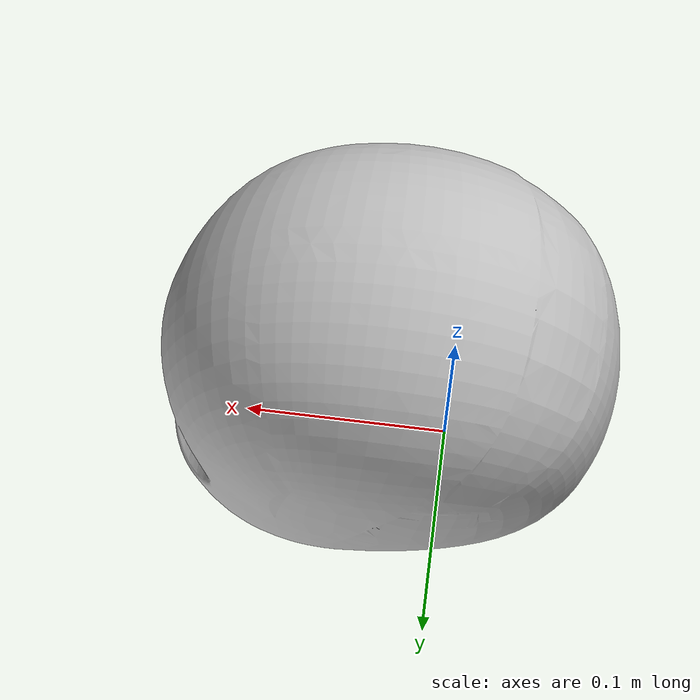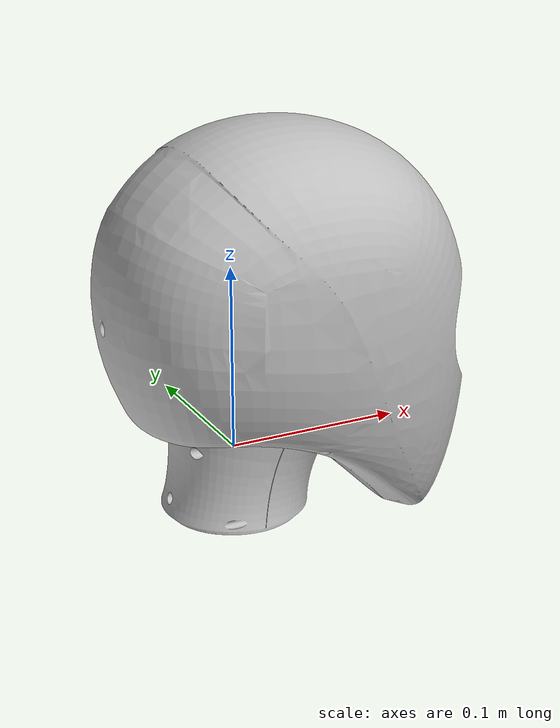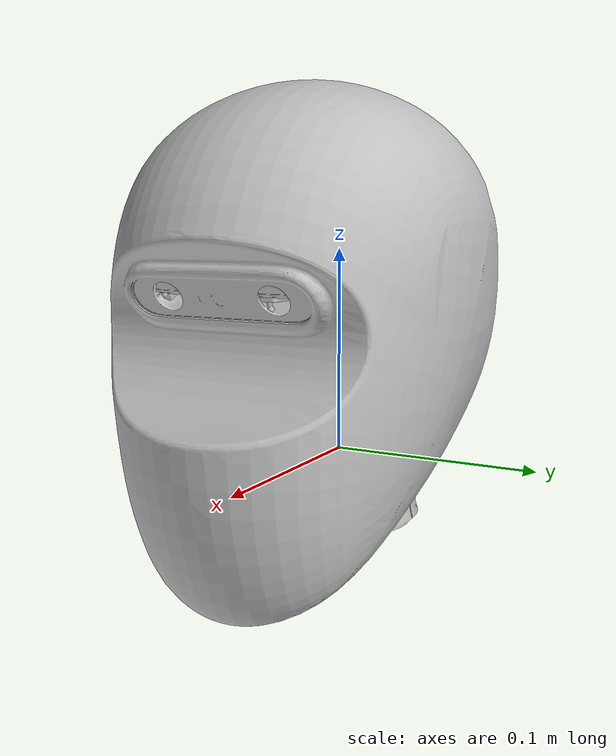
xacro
<?xml version="1.0" encoding="utf-8"?>
<robot xmlns:xacro="http://wiki.ros.org/xacro"
  name="head">
  <link
    name="head_yaw_link">
    <inertial>
      <origin
        xyz="-0.000202 0.000454 0.007248"
        rpy="0 0 0" />
      <mass
        value="0.0883974" />
      <inertia
        ixx="0.000095"
        ixy="-0.000001"
        ixz="-0.000003"
        iyy="0.000076"
        iyz="-0.000003"
        izz="0.000106" />
    </inertial>
    <visual>
      <origin
        xyz="0 0 0"
        rpy="0 0 0" />
      <geometry>
        <mesh
          filename="package://tianyi2_description/meshes/head/visual/head_yaw_link.STL" />
      </geometry>
      <material
        name="">
        <color
          rgba="0.752941176470588 0.752941176470588 0.752941176470588 1" />
      </material>
    </visual>
    <collision>
      <origin
        xyz="0 0 0"
        rpy="0 0 0" />
      <geometry>
        <sphere radius="0.01"/>
      </geometry>
    </collision>
  </link>
  <link
    name="head_pitch_link">
    <inertial>
      <origin
        xyz="-0.000274 0.004118 0.000023"
        rpy="0 0 0" />
      <mass
        value="0.230460" />
      <inertia
        ixx="0.000092"
        ixy="0.000001"
        ixz="-0.000001"
        iyy="0.000054"
        iyz="0"
        izz="0.000095" />
    </inertial>
    <visual>
      <origin
        xyz="0 0 0"
        rpy="0 0 0" />
      <geometry>
        <mesh
          filename="package://tianyi2_description/meshes/head/visual/head_pitch_link.STL" />
      </geometry>
      <material
        name="">
        <color
          rgba="0.752941176470588 0.752941176470588 0.752941176470588 1" />
      </material>
    </visual>
    <collision>
      <origin
        xyz="0 0 0"
        rpy="0 0 0" />
      <geometry>
        <sphere radius="0.01"/>
      </geometry>
    </collision>
  </link>
  <joint
    name="head_pitch_joint"
    type="revolute">
    <origin
      xyz="0.01455 0 0.0304"
      rpy="0 0.2618 0" />
    <parent
      link="head_yaw_link" />
    <child
      link="head_pitch_link" />
    <axis
      xyz="0 1 0" />
    <limit
      lower="-0.61"
      upper="0.61"
      effort="9"
      velocity="7.54" />
  </joint>
  <link
    name="head_roll_link">
    <inertial>
      <origin
        xyz="0.022467 0.001208 0.053952"
        rpy="0 0 0" />
      <mass
        value="0.844627" />
      <inertia
        ixx="0.002350"
        ixy="0.000038"
        ixz="0.000436"
        iyy="0.003365"
        iyz="0.000006"
        izz="0.002875" />
    </inertial>
    <visual>
      <origin
        xyz="0 0 0"
        rpy="0 0 0" />
      <geometry>
        <mesh
          filename="package://tianyi2_description/meshes/head/visual/head_roll_link.STL" />
      </geometry>
      <material
        name="">
        <color
          rgba="0.752941176470588 0.752941176470588 0.752941176470588 1" />
      </material>
    </visual>
    <collision>
      <origin
        xyz="0 0 0"
        rpy="0 0 0" />
      <geometry>
        <mesh
          filename="package://tianyi2_description/meshes/head/collision/head_roll_link.STL" />
      </geometry>
    </collision>
  </link>
  <joint
    name="head_roll_joint"
    type="revolute">
    <origin
      xyz="0 0 0"
      rpy="0 0 0" />
    <parent
      link="head_pitch_link" />
    <child
      link="head_roll_link" />
    <axis
      xyz="1 0 0" />
    <limit
      lower="-0.453"
      upper="0.453"
      effort="9"
      velocity="7.54" />
  </joint>
   <link
    name="camera_link">
    <inertial>
      <origin
        xyz="0.00466587648285718 0.000326337431360593 0.0122709936263605"
        rpy="0 0 0" />
      <mass
        value="0.0203862295167284" />
      <inertia
        ixx="1.38689665714815E-05"
        ixy="5.03456778877546E-09"
        ixz="-1.79627680533128E-08"
        iyy="1.7247762196249E-06"
        iyz="1.09490844229118E-08"
        izz="1.31832376609253E-05" />
    </inertial>
    <visual>
      <origin
        xyz="0 0 0"
        rpy="0 0 0" />
      <geometry>
        <mesh
          filename="package://tianyi2_description/meshes/head/visual/camera_link.STL" />
      </geometry>
      <material
        name="">
        <color
          rgba="0.752941176470588 0.752941176470588 0.752941176470588 1" />
      </material>
    </visual>
    <collision>
      <origin
        xyz="0 0 0"
        rpy="0 0 0" />
      <geometry>
        <mesh
          filename="package://tianyi2_description/meshes/head/collision/camera_link.STL" />
      </geometry>
    </collision>
  </link>
  <joint
    name="camera_joint"
    type="fixed">
    <origin
      xyz="0.052782 -6.5455E-05 0.067499"
      rpy="0 -0.2618 0" />
    <parent
      link="head_roll_link" />
    <child
      link="camera_link" />
    <axis
      xyz="0 0 0" />
  </joint>

</robot>
